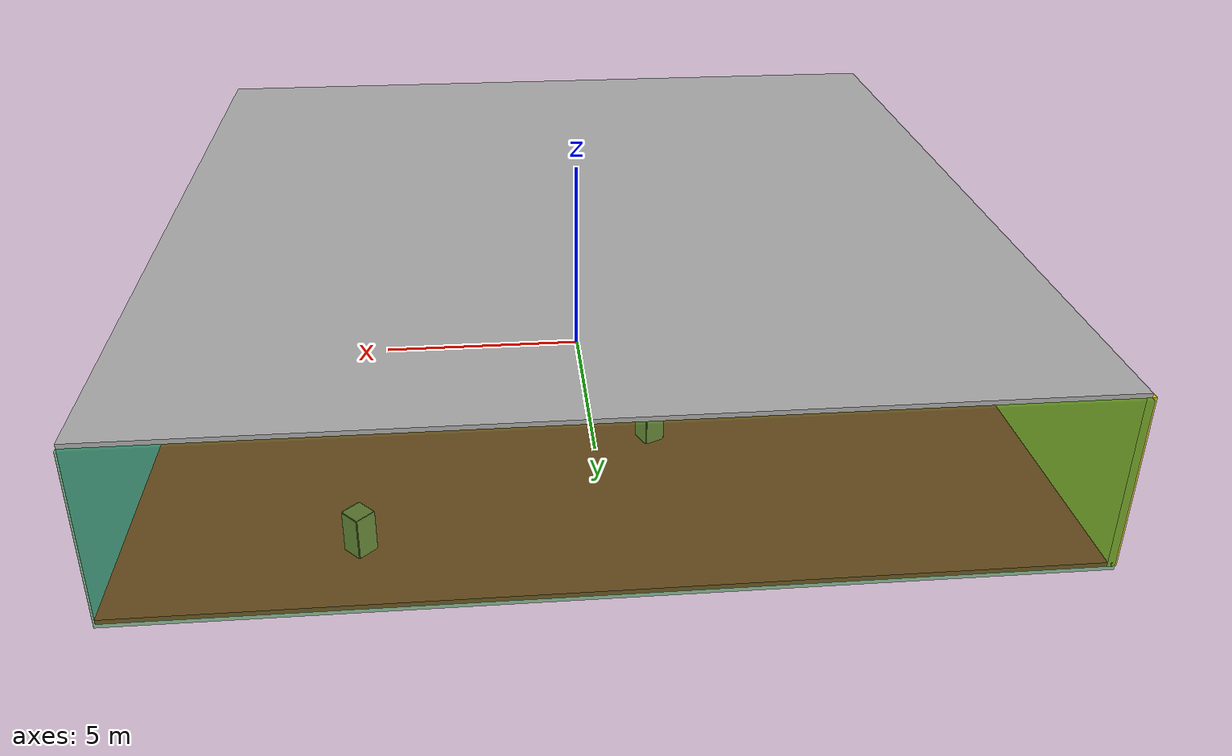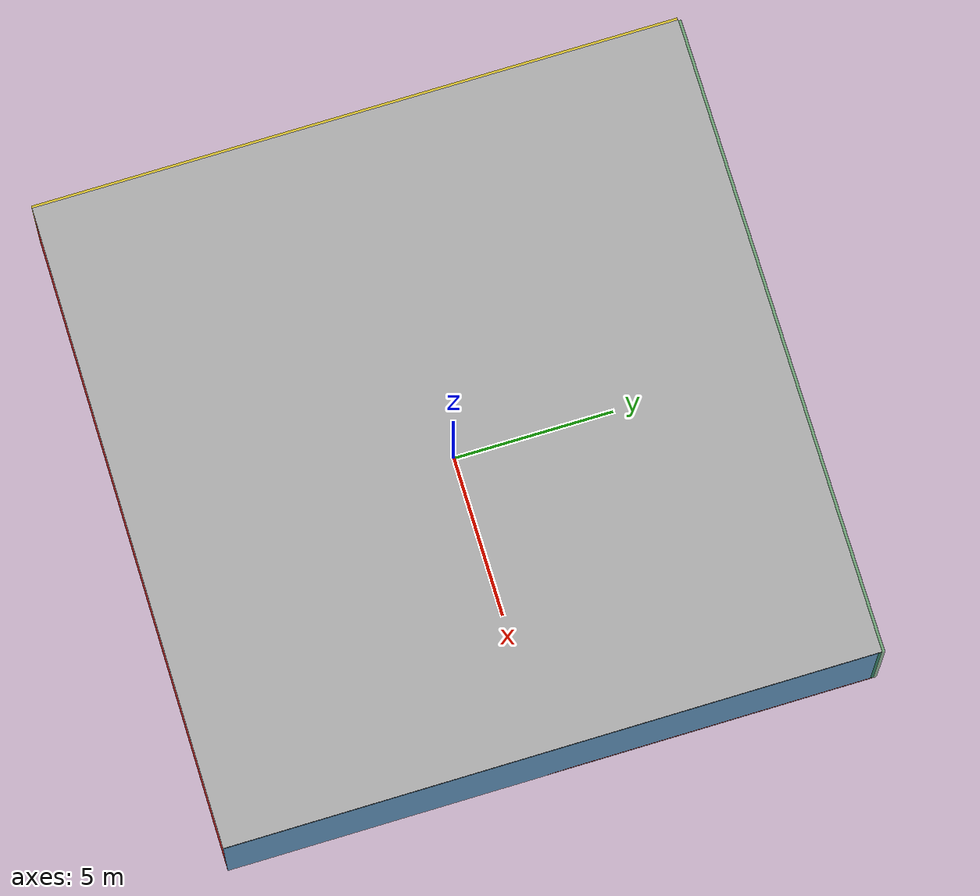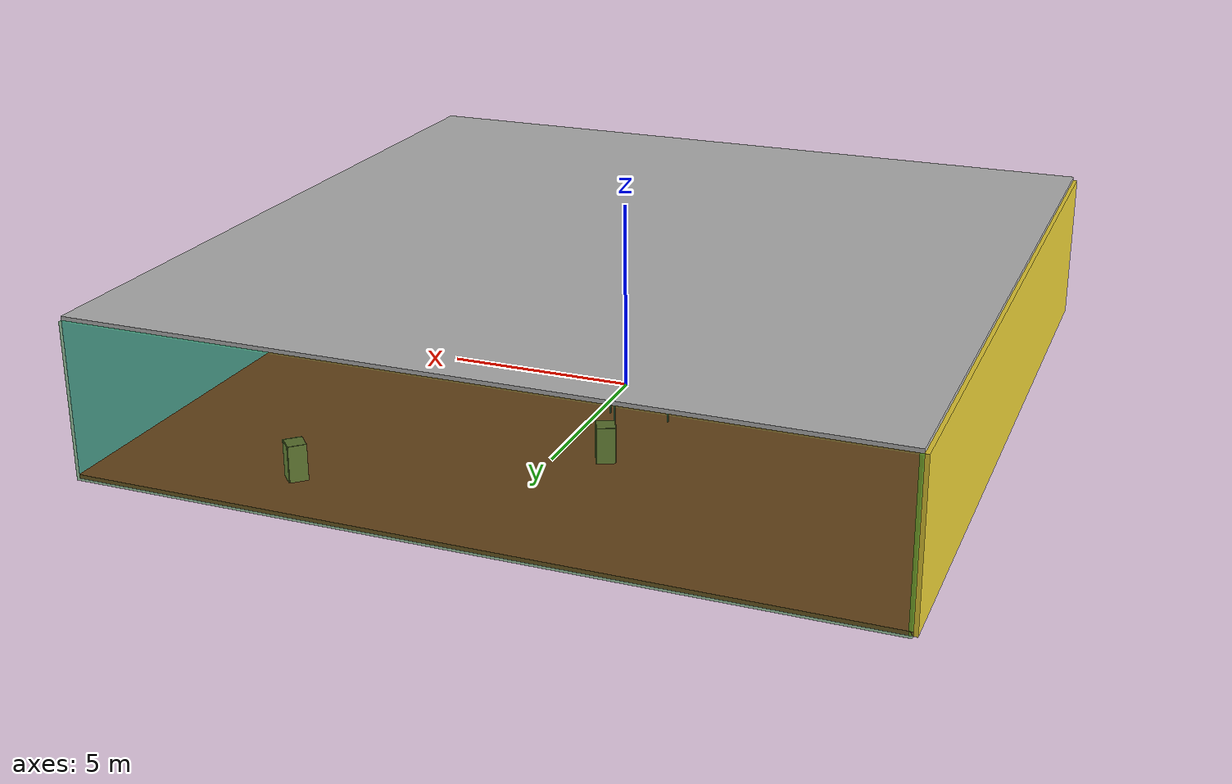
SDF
<sdf version="1.4">
 <world name="default">
  <physics type="ode">
   <max_step_size>0.001</max_step_size>
   <real_time_factor>1</real_time_factor>
   <real_time_update_rate>1000</real_time_update_rate>
   <gravity>0 0 -9.8</gravity>
  </physics>
  <scene><ambient>0.4 0.4 0.4 1</ambient><background>0.7 0.7 0.7 1</background><shadows>1</shadows></scene>
  <model name="Surrounding">
   <static>1</static>
   <link name="Ceiling">
    <collision name="Ceiling_Collision"><geometry><box><size>20 20 0.1</size></box></geometry></collision>
    <visual name="Ceiling_Visual">
     <geometry><box><size>20 20 0.1</size></box></geometry>
     <material>
      <script><uri>file://media/materials/scripts/gazebo.material</uri><name>Gazebo/Pioneer2Body</name></script>
     </material>
    </visual>
    <pose>0 0 4.05 0 0 0</pose>
   </link>
   <link name="Wall_South">
    <collision name="Wall_South_Collision">
     <geometry><box><size>20 0 4</size></box></geometry>
     <pose>0 0 2 0 -0 0</pose>
    </collision>
    <visual name="Wall_South_Visual">
     <pose>0 0 2 0 -0 0</pose>
     <geometry><box><size>20 0 4</size></box></geometry>
     <material>
      <script><uri>file://media/materials/scripts/gazebo.material</uri><name>Gazebo/RedBright</name></script>
     </material>
    </visual>
    <velocity_decay><linear>0</linear><angular>0</angular></velocity_decay>
    <pose>0 -10 0 0 -0 0</pose>
   </link>
   <link name="Wall_East">
    <collision name="Wall_21_Collision">
     <geometry><box><size>20 0 4</size></box></geometry>
     <pose>0 0 2 0 -0 0</pose>
    </collision>
    <visual name="Wall_21_Visual">
     <pose>0 0 2 0 -0 0</pose>
     <geometry><box><size>20 0 4</size></box></geometry>
     <material>
      <script><uri>file://media/materials/scripts/gazebo.material</uri><name>Gazebo/SkyBlue</name></script>
     </material>
    </visual>
    <velocity_decay><linear>0</linear><angular>0</angular></velocity_decay>
    <pose>10 0 0 0 -0 1.5708</pose>
   </link>
   <link name="Wall_North">
    <collision name="Wall_22_Collision">
     <geometry><box><size>20 0.2 4</size></box></geometry>
     <pose>0 0 2 0 -0 0</pose>
    </collision>
    <visual name="Wall_22_Visual">
     <pose>0 0 2 0 -0 0</pose>
     <geometry><box><size>20 0.2 4</size></box></geometry>
     <material>
      <script><uri>file://media/materials/scripts/gazebo.material</uri><name>Gazebo/GreenTransparent</name></script>
     </material>
    </visual>
    <velocity_decay><linear>0</linear><angular>0</angular></velocity_decay>
    <pose>0 10 0 0 -0 0</pose>
   </link>
   <link name="Wall_West">
    <collision name="Wall_23_Collision">
     <geometry><box><size>20 0.2 4</size></box></geometry>
     <pose>0 0 2 0 -0 0</pose>
    </collision>
    <visual name="Wall_23_Visual">
     <pose>0 0 2 0 -0 0</pose>
     <geometry><box><size>20 0.2 4</size></box></geometry>
     <material>
      <script><uri>file://media/materials/scripts/gazebo.material</uri><name>Gazebo/ZincYellow</name></script>
     </material>
    </visual>
    <velocity_decay><linear>0</linear><angular>0</angular></velocity_decay>
    <pose>-10 0 0 0 0 -1.5708</pose>
   </link>
   <link name="Ground_link">
    <collision name="collision">
     <pose>0 0 .05 0 -0 0</pose>
     <geometry><box><size>20 20 0.1</size></box></geometry>
    </collision>
    <visual name="visual">
     <pose>0 0 .05 0 -0 0</pose>
     <geometry><box><size>20 20 0.1</size></box></geometry>
     <material>
      <script><uri>file://media/materials/scripts/gazebo.material</uri><name>Gazebo/Red</name></script>
     </material>
    </visual>
   </link>
   <static>1</static>
  </model>
  <spherical_coordinates>
   <surface_model>EARTH_WGS84</surface_model>
   <latitude_deg>0</latitude_deg>
   <longitude_deg>0</longitude_deg>
   <elevation>0</elevation>
   <heading_deg>0</heading_deg>
  </spherical_coordinates>
  <light name="lightball_0" type="diffuse">
   <diffuse>0.8 0.8 0.8 1</diffuse>
   <specular>0.2 0.2 0.2 1</specular>
   <attenuation>
    <range>100</range>
    <constant>0.7</constant>
    <linear>0.01</linear>
    <quadratic>0.001</quadratic>
   </attenuation>
   <direction>-0.5 0.1 -0.9</direction>
   <pose>-3.46901719776 -1.48260009633 2.92644146198 0 0 0</pose>
  </light>
  <light name="lightball_1" type="diffuse">
   <diffuse>0.8 0.8 0.8 1</diffuse>
   <specular>0.2 0.2 0.2 1</specular>
   <attenuation>
    <range>100</range>
    <constant>0.7</constant>
    <linear>0.01</linear>
    <quadratic>0.001</quadratic>
   </attenuation>
   <direction>-0.5 0.1 -0.9</direction>
   <pose>2.57986486724 6.97978667937 0.532502432423 0 0 0</pose>
  </light>
  <light name="lightball_2" type="diffuse">
   <diffuse>0.8 0.8 0.8 1</diffuse>
   <specular>0.2 0.2 0.2 1</specular>
   <attenuation>
    <range>100</range>
    <constant>0.7</constant>
    <linear>0.01</linear>
    <quadratic>0.001</quadratic>
   </attenuation>
   <direction>-0.5 0.1 -0.9</direction>
   <pose>-5.0247044859 6.1419605156 0.512998727685 0 0 0</pose>
  </light>
  <light name="lightball_3" type="diffuse">
   <diffuse>0.8 0.8 0.8 1</diffuse>
   <specular>0.2 0.2 0.2 1</specular>
   <attenuation>
    <range>100</range>
    <constant>0.7</constant>
    <linear>0.01</linear>
    <quadratic>0.001</quadratic>
   </attenuation>
   <direction>-0.5 0.1 -0.9</direction>
   <pose>9.80757645439 9.57932455362 3.55111361341 0 0 0</pose>
  </light>
  <light name="lightball_4" type="diffuse">
   <diffuse>0.8 0.8 0.8 1</diffuse>
   <specular>0.2 0.2 0.2 1</specular>
   <attenuation>
    <range>100</range>
    <constant>0.7</constant>
    <linear>0.01</linear>
    <quadratic>0.001</quadratic>
   </attenuation>
   <direction>-0.5 0.1 -0.9</direction>
   <pose>0.42262143844 2.33438728993 1.176310719 0 0 0</pose>
  </light>
  <light name="lightball_5" type="diffuse">
   <diffuse>0.8 0.8 0.8 1</diffuse>
   <specular>0.2 0.2 0.2 1</specular>
   <attenuation>
    <range>100</range>
    <constant>0.7</constant>
    <linear>0.01</linear>
    <quadratic>0.001</quadratic>
   </attenuation>
   <direction>-0.5 0.1 -0.9</direction>
   <pose>4.97158477806 8.25658322719 2.34163450805 0 0 0</pose>
  </light>
  <light name="lightball_6" type="diffuse">
   <diffuse>0.8 0.8 0.8 1</diffuse>
   <specular>0.2 0.2 0.2 1</specular>
   <attenuation>
    <range>100</range>
    <constant>0.7</constant>
    <linear>0.01</linear>
    <quadratic>0.001</quadratic>
   </attenuation>
   <direction>-0.5 0.1 -0.9</direction>
   <pose>5.35771557318 6.46789713996 1.41501641161 0 0 0</pose>
  </light>
  <light name="lightball_7" type="diffuse">
   <diffuse>0.8 0.8 0.8 1</diffuse>
   <specular>0.2 0.2 0.2 1</specular>
   <attenuation>
    <range>100</range>
    <constant>0.7</constant>
    <linear>0.01</linear>
    <quadratic>0.001</quadratic>
   </attenuation>
   <direction>-0.5 0.1 -0.9</direction>
   <pose>-0.348521731642 -4.83958089179 3.11768902547 0 0 0</pose>
  </light>
  <light name="lightball_8" type="diffuse">
   <diffuse>0.8 0.8 0.8 1</diffuse>
   <specular>0.2 0.2 0.2 1</specular>
   <attenuation>
    <range>100</range>
    <constant>0.7</constant>
    <linear>0.01</linear>
    <quadratic>0.001</quadratic>
   </attenuation>
   <direction>-0.5 0.1 -0.9</direction>
   <pose>9.93466847237 -6.51889587218 3.546885538 0 0 0</pose>
  </light>
  <include>
   <uri>model://robocup_3Dsim_goal</uri>
   <pose>-1.5209542948 -3.79823222951 0 0 0 0.650980770834</pose>
  </include>
  <include><uri>model://table</uri><pose>-1.16982264787 2.1063278213 0 0 0 0.494074870458</pose></include>
  <include><uri>model://cabinet</uri><pose>-1.30736786367 4.73384570497 0 0 0 1.99267103999</pose></include>
  <include><uri>model://cabinet</uri><pose>5.10826852033 8.28228690118 0 0 0 0.758487560237</pose></include>
 </world>
</sdf>

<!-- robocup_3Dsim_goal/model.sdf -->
<sdf version="1.5">
  <model name="robocup_3d_goal">
    <static>true</static>
    <link name="left_post">
      <pose>0 1.05 0.45 0 0 0</pose>
      <collision name="collision">
        <geometry>
          <cylinder>
            <radius>0.05</radius>
            <length>0.9</length>
          </cylinder>
        </geometry>
      </collision>
      <visual name="visual">
        <geometry>
          <cylinder>
            <radius>0.05</radius>
            <length>0.9</length>
          </cylinder>
        </geometry>
        <material>
          <script>
            <uri>file://media/materials/scripts/gazebo.material</uri>
            <name>Gazebo/ZincYellow</name>
          </script>
        </material>
      </visual>
    </link>
    <link name="left_support_horiz_lower">
      <pose>0.30 1.05 0.01 0 0 0</pose>
      <collision name="collision">
        <geometry>
          <box>
            <size>0.50 0.02 0.02</size>
          </box>
        </geometry>
      </collision>
      <visual name="visual">
        <geometry>
          <box>
            <size>0.50 0.02 0.02</size>
          </box>
        </geometry>
        <material>
          <script>
            <uri>file://media/materials/scripts/gazebo.material</uri>
            <name>Gazebo/White</name>
          </script>
        </material>
      </visual>
    </link>
    <link name="left_support_horiz_upper">
      <pose>0.30 1.05 0.79 0 0 0</pose>
      <collision name="collision">
        <geometry>
          <box>
            <size>0.50 0.02 0.02</size>
          </box>
        </geometry>
      </collision>
      <visual name="visual">
        <geometry>
          <box>
            <size>0.50 0.02 0.02</size>
          </box>
        </geometry>
        <material>
          <script>
            <uri>file://media/materials/scripts/gazebo.material</uri>
            <name>Gazebo/White</name>
          </script>
        </material>
      </visual>
    </link>
    <link name="left_support_vertical">
      <pose>0.56 1.05 0.4 0 1.5708 0</pose>
      <collision name="collision">
        <geometry>
          <box>
            <size>0.80 0.02 0.02</size>
          </box>
        </geometry>
      </collision>
      <visual name="visual">
        <geometry>
          <box>
            <size>0.80 0.02 0.02</size>
          </box>
        </geometry>
        <material>
          <script>
            <uri>file://media/materials/scripts/gazebo.material</uri>
            <name>Gazebo/White</name>
          </script>
        </material>
      </visual>
    </link>
    <link name="right_support_horiz_lower">
      <pose>0.30 -1.05 0.01 0 0 0</pose>
      <collision name="collision">
        <geometry>
          <box>
            <size>0.50 0.02 0.02</size>
          </box>
        </geometry>
      </collision>
      <visual name="visual">
        <geometry>
          <box>
            <size>0.50 0.02 0.02</size>
          </box>
        </geometry>
        <material>
          <script>
            <uri>file://media/materials/scripts/gazebo.material</uri>
            <name>Gazebo/White</name>
          </script>
        </material>
      </visual>
    </link>
    <link name="right_support_horiz_upper">
      <pose>0.30 -1.05 0.79 0 0 0</pose>
      <collision name="collision">
        <geometry>
          <box>
            <size>0.50 0.02 0.02</size>
          </box>
        </geometry>
      </collision>
      <visual name="visual">
        <geometry>
          <box>
            <size>0.50 0.02 0.02</size>
          </box>
        </geometry>
        <material>
          <script>
            <uri>file://media/materials/scripts/gazebo.material</uri>
            <name>Gazebo/White</name>
          </script>
        </material>
      </visual>
    </link>
    <link name="right_support_vertical">
      <pose>0.56 -1.05 0.4 0 1.5708 0</pose>
      <collision name="collision">
        <geometry>
          <box>
            <size>0.80 0.02 0.02</size>
          </box>
        </geometry>
      </collision>
      <visual name="visual">
        <geometry>
          <box>
            <size>0.80 0.02 0.02</size>
          </box>
        </geometry>
        <material>
          <script>
            <uri>file://media/materials/scripts/gazebo.material</uri>
            <name>Gazebo/White</name>
          </script>
        </material>
      </visual>
    </link>
    <link name="center_support_horiz_lower">
      <pose>0.56 0 0.01 0 1.5708 0</pose>
      <collision name="collision">
        <geometry>
          <box>
            <size>0.02 2.08 0.02</size>
          </box>
        </geometry>
      </collision>
      <visual name="visual">
        <geometry>
          <box>
            <size>0.02 2.08 0.02</size>
          </box>
        </geometry>
        <material>
          <script>
            <uri>file://media/materials/scripts/gazebo.material</uri>
            <name>Gazebo/White</name>
          </script>
        </material>
      </visual>
    </link>
    <link name="center_support_horiz_upper">
      <pose>0.56 0 0.79 0 1.5708 0</pose>
      <collision name="collision">
        <geometry>
          <box>
            <size>0.02 2.08 0.02</size>
          </box>
        </geometry>
      </collision>
      <visual name="visual">
        <geometry>
          <box>
            <size>0.02 2.08 0.02</size>
          </box>
        </geometry>
        <material>
          <script>
            <uri>file://media/materials/scripts/gazebo.material</uri>
            <name>Gazebo/White</name>
          </script>
        </material>
      </visual>
    </link>
    <link name="right_post">
      <pose>0 -1.05 0.45 0 0 0</pose>
      <collision name="collision">
        <geometry>
          <cylinder>
            <radius>0.05</radius>
            <length>0.9</length>
          </cylinder>
        </geometry>
      </collision>
      <visual name="visual">
        <geometry>
          <cylinder>
            <radius>0.05</radius>
            <length>0.9</length>
          </cylinder>
        </geometry>
        <material>
          <script>
            <uri>file://media/materials/scripts/gazebo.material</uri>
            <name>Gazebo/ZincYellow</name>
          </script>
        </material>
      </visual>
    </link>
    <link name="crossbar">
      <pose>0 0 0.85 1.57 1.57 0</pose>
      <collision name="collision">
        <geometry>
          <cylinder>
            <radius>0.05</radius>
            <length>2.0</length>
          </cylinder>
        </geometry>
      </collision>
      <visual name="visual">
        <geometry>
          <cylinder>
            <radius>0.05</radius>
            <length>2.0</length>
          </cylinder>
        </geometry>
        <material>
          <script>
            <uri>file://media/materials/scripts/gazebo.material</uri>
            <name>Gazebo/ZincYellow</name>
          </script>
        </material>
      </visual>
    </link>
    <link name="center_net">
      <pose>0.56 0 0.40 0 0 0</pose>
      <collision name="collision">
        <geometry>
          <box>
            <size>0.01 2.1 0.80</size>
          </box>
        </geometry>
      </collision>
      <visual name="visual">
        <geometry>
          <box>
            <size>0.01 2.1 0.80</size>
          </box>
        </geometry>
        <material>
          <script>
            <uri>model://../model_source/models/robocup09_spl_field/materials/scripts/</uri>
            <uri>model://../model_source/models/robocup09_spl_field/materials/textures/</uri>
            <name>RoboCup/Net</name>
          </script>
        </material>
      </visual>
    </link>
    <link name="left_net">
      <pose>0.30 1.05 0.40 0 0 0</pose>
      <collision name="collision">
        <geometry>
          <box>
            <size>0.50 0.01 0.76</size>
          </box>
        </geometry>
      </collision>
      <visual name="visual">
        <geometry>
          <box>
            <size>0.50 0.01 0.76</size>
          </box>
        </geometry>
        <material>
          <script>
            <uri>model://../model_source/models/robocup09_spl_field/materials/scripts/</uri>
            <uri>model://../model_source/models/robocup09_spl_field/materials/textures/</uri>
            <name>RoboCup/Net</name>
          </script>
        </material>
      </visual>
    </link>
    <link name="right_net">
      <pose>0.30 -1.05 0.40 0 0 0</pose>
      <collision name="collision">
        <geometry>
          <box>
            <size>0.50 0.01 0.76</size>
          </box>
        </geometry>
      </collision>
      <visual name="visual">
        <geometry>
          <box>
            <size>0.50 0.01 0.76</size>
          </box>
        </geometry>
        <material>
          <script>
            <uri>model://../model_source/models/robocup09_spl_field/materials/scripts/</uri>
            <uri>model://../model_source/models/robocup09_spl_field/materials/textures/</uri>
            <name>RoboCup/Net</name>
          </script>
        </material>
      </visual>
    </link>
  </model>
</sdf>

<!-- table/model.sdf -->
<sdf version="1.5">
  <model name="table">
    <static>true</static>
    <link name="link">
      <collision name="surface">
        <pose>0 0 1.0 0 0 0</pose>
        <geometry>
          <box>
            <size>1.5 0.8 0.03</size>
          </box>
        </geometry>
        <surface>
          <friction>
            <ode>
              <mu>0.6</mu>
              <mu2>0.6</mu2>
            </ode>
          </friction>
        </surface>
      </collision>
      <visual name="visual1">
        <pose>0 0 1.0 0 0 0</pose>
        <geometry>
          <box>
            <size>1.5 0.8 0.03</size>
          </box>
        </geometry>
        <material>
          <script>
            <uri>model://media/materials/scripts/gazebo.material</uri>
            <name>Gazebo/Wood</name>
          </script>
        </material>
      </visual>
      <collision name="front_left_leg">
        <pose>0.68 0.38 0.5 0 0 0</pose>
        <geometry>
          <cylinder>
            <radius>0.02</radius>
            <length>1.0</length>
          </cylinder>
        </geometry>
      </collision>
      <visual name="front_left_leg">
        <pose>0.68 0.38 0.5 0 0 0</pose>
        <geometry>
          <cylinder>
            <radius>0.02</radius>
            <length>1.0</length>
          </cylinder>
        </geometry>
        <material>
          <script>
            <uri>model://media/materials/scripts/gazebo.material</uri>
            <name>Gazebo/Grey</name>
          </script>
        </material>
      </visual>
      <collision name="front_right_leg">
        <pose>0.68 -0.38 0.5 0 0 0</pose>
        <geometry>
          <cylinder>
            <radius>0.02</radius>
            <length>1.0</length>
          </cylinder>
        </geometry>
      </collision>
      <visual name="front_right_leg">
        <pose>0.68 -0.38 0.5 0 0 0</pose>
        <geometry>
          <cylinder>
            <radius>0.02</radius>
            <length>1.0</length>
          </cylinder>
        </geometry>
        <material>
          <script>
            <uri>model://media/materials/scripts/gazebo.material</uri>
            <name>Gazebo/Grey</name>
          </script>
        </material>
      </visual>
      <collision name="back_right_leg">
        <pose>-0.68 -0.38 0.5 0 0 0</pose>
        <geometry>
          <cylinder>
            <radius>0.02</radius>
            <length>1.0</length>
          </cylinder>
        </geometry>
      </collision>
      <visual name="back_right_leg">
        <pose>-0.68 -0.38 0.5 0 0 0</pose>
        <geometry>
          <cylinder>
            <radius>0.02</radius>
            <length>1.0</length>
          </cylinder>
        </geometry>
        <material>
          <script>
            <uri>model://media/materials/scripts/gazebo.material</uri>
            <name>Gazebo/Grey</name>
          </script>
        </material>
      </visual>
      <collision name="back_left_leg">
        <pose>-0.68 0.38 0.5 0 0 0</pose>
        <geometry>
          <cylinder>
            <radius>0.02</radius>
            <length>1.0</length>
          </cylinder>
        </geometry>
      </collision>
      <visual name="back_left_leg">
        <pose>-0.68 0.38 0.5 0 0 0</pose>
        <geometry>
          <cylinder>
            <radius>0.02</radius>
            <length>1.0</length>
          </cylinder>
        </geometry>
        <material>
          <script>
            <uri>model://media/materials/scripts/gazebo.material</uri>
            <name>Gazebo/Grey</name>
          </script>
        </material>
      </visual>
    </link>
  </model>
</sdf>

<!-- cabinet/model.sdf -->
<sdf version="1.5">
  <model name="cabinet">
    <static>true</static>
    <link name="cabinet_bottom_plate">
      <inertial>
        <pose>0 0 -1 0 0 0</pose>
        <inertia>
          <ixx>2.050000</ixx>
          <ixy>0</ixy>
          <ixz>0</ixz>
          <iyy>2.050000</iyy>
          <iyz>0</iyz>
          <izz>2.050000</izz>
        </inertia>
        <mass>25.000000</mass>
      </inertial>
      <collision name="cabinet_bottom_plate_geom">
        <pose>0 0 0.010000 0 0 0</pose>
        <geometry>
          <box>
            <size>0.450000 0.450000 0.020000</size>
          </box>
        </geometry>
      </collision>
      <visual name="cabinet_bottom_plate_geom_visual">
        <pose>0 0 0.010000 0 0 0</pose>
        <geometry>
          <box>
            <size>0.450000 0.450000 0.020000</size>
          </box>
        </geometry>
        <material>
          <script>
            <uri>model://media/materials/scripts/gazebo.material</uri>
            <name>Gazebo/Wood</name>
          </script>
        </material>
      </visual>
      <collision name="cabinet_bottom_plate_geom_cabinet_back_plate">
        <pose>0.235000 0 0.510000 0 0 0</pose>
        <geometry>
          <box>
            <size>0.020000 0.450000 1.020000</size>
          </box>
        </geometry>
      </collision>
      <visual name="cabinet_bottom_plate_geom_cabinet_back_plate_visual">
        <pose>0.235000 0 0.510000 0 0 0</pose>
        <geometry>
          <box>
            <size>0.020000 0.450000 1.020000</size>
          </box>
        </geometry>
        <material>
          <script>
            <uri>model://media/materials/scripts/gazebo.material</uri>
            <name>Gazebo/Wood</name>
          </script>
        </material>
      </visual>
      <collision name="cabinet_bottom_plate_geom_cabinet_left_plate">
        <pose>0 0.235000 0.510000 0 0 0</pose>
        <geometry>
          <box>
            <size>0.450000 0.020000 1.020000</size>
          </box>
        </geometry>
      </collision>
      <visual name="cabinet_bottom_plate_geom_cabinet_left_plate_visual">
        <pose>0 0.235000 0.510000 0 0 0</pose>
        <geometry>
          <box>
            <size>0.450000 0.020000 1.020000</size>
          </box>
        </geometry>
        <material>
          <script>
            <uri>model://media/materials/scripts/gazebo.material</uri>
            <name>Gazebo/Wood</name>
          </script>
        </material>
      </visual>
      <collision name="cabinet_bottom_plate_geom_cabinet_middle_plate">
        <pose>0 0 0.510000 0 0 0</pose>
        <geometry>
          <box>
            <size>0.450000 0.450000 0.020000</size>
          </box>
        </geometry>
      </collision>
      <visual name="cabinet_bottom_plate_geom_cabinet_middle_plate_visual">
        <pose>0 0 0.510000 0 0 0</pose>
        <geometry>
          <box>
            <size>0.450000 0.450000 0.020000</size>
          </box>
        </geometry>
        <material>
          <script>
            <uri>model://media/materials/scripts/gazebo.material</uri>
            <name>Gazebo/Wood</name>
          </script>
        </material>
      </visual>
      <collision name="cabinet_bottom_plate_geom_cabinet_right_plate">
        <pose>0 -0.235000 0.510000 0 0 0</pose>
        <geometry>
          <box>
            <size>0.450000 0.020000 1.020000</size>
          </box>
        </geometry>
      </collision>
      <visual name="cabinet_bottom_plate_geom_cabinet_right_plate_visual">
        <pose>0 -0.235000 0.510000 0 0 0</pose>
        <geometry>
          <box>
            <size>0.450000 0.020000 1.020000</size>
          </box>
        </geometry>
        <material>
          <script>
            <uri>model://media/materials/scripts/gazebo.material</uri>
            <name>Gazebo/Wood</name>
          </script>
        </material>
      </visual>
      <collision name="cabinet_bottom_plate_geom_cabinet_top_plate">
        <pose>0 0 1.010000 0 0 0</pose>
        <geometry>
          <box>
            <size>0.450000 0.450000 0.020000</size>
          </box>
        </geometry>
      </collision>
      <visual name="cabinet_bottom_plate_geom_cabinet_top_plate_visual">
        <pose>0 0 1.010000 0 0 0</pose>
        <geometry>
          <box>
            <size>0.450000 0.450000 0.020000</size>
          </box>
        </geometry>
        <material>
          <script>
            <uri>model://media/materials/scripts/gazebo.material</uri>
            <name>Gazebo/Wood</name>
          </script>
        </material>
      </visual>
    </link>
  </model>
</sdf>
